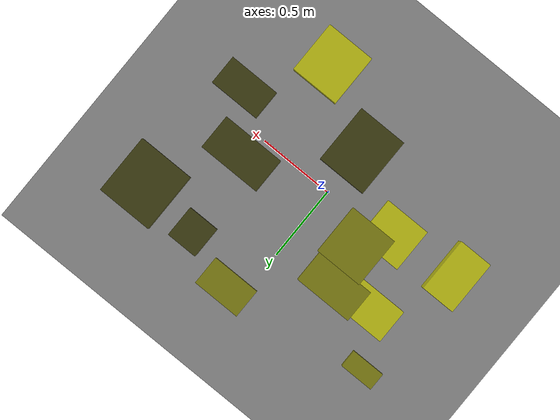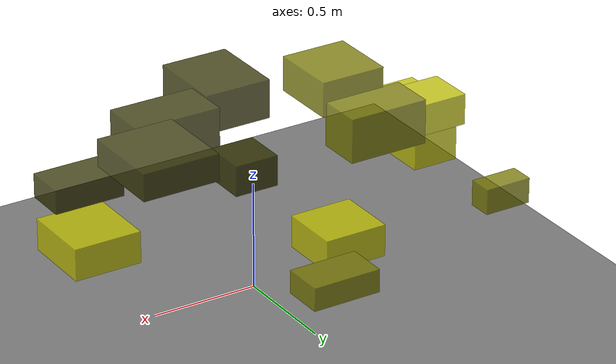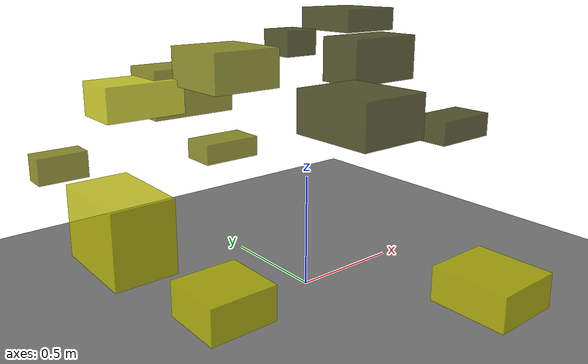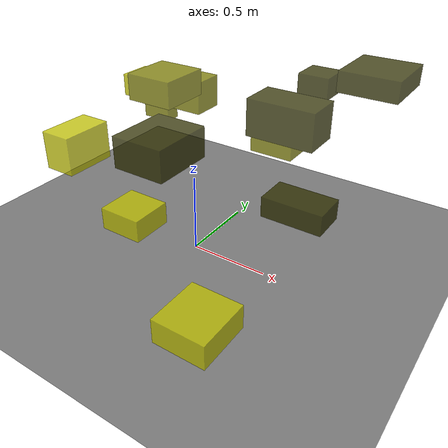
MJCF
<?xml version="1.0"?>
<mujoco model="obstacle_scene">
  <compiler angle="radian" coordinate="local"/>
  <option timestep="0.001" gravity="0 0 -9.81"/>

  <asset>
    <material name="obstacle_mat" rgba="0.8 0.8 0.0 0.8"/>
    <material name="ground_mat" rgba="0.5 0.5 0.5 1"/>
  </asset>

  <worldbody>
    <!-- Ground plane -->
    <geom name="ground" type="plane" size="3 3 0.1" material="ground_mat"/>

    <!-- Obstacles -->
    <body name="obstacle_0" pos="0.523465 0.154804 0.952986">
      <geom name="obs_0" type="box" size="0.197353 0.110908 0.106844" rgba="0.2 0.2 0.0 0.8"/>
    </body>
    <body name="obstacle_1" pos="-0.816470 0.686930 0.543526">
      <geom name="obs_1" type="box" size="0.108745 0.055883 0.058779" rgba="0.5 0.5 0.0 0.8"/>
    </body>
    <body name="obstacle_2" pos="-0.597345 0.373184 0.862191">
      <geom name="obs_2" type="box" size="0.167106 0.107828 0.070829" rgba="0.8 0.8 0.0 0.8"/>
    </body>
    <body name="obstacle_3" pos="0.004625 -0.297763 0.826412">
      <geom name="obs_3" type="box" size="0.157388 0.186065 0.091189" rgba="0.2 0.2 0.0 0.8"/>
    </body>
    <body name="obstacle_4" pos="0.113139 0.822488 0.439111">
      <geom name="obs_4" type="box" size="0.158405 0.094819 0.053419" rgba="0.5 0.5 0.0 0.8"/>
    </body>
    <body name="obstacle_5" pos="0.474707 -0.624656 0.079236">
      <geom name="obs_5" type="box" size="0.165060 0.175139 0.078312" rgba="0.8 0.8 0.0 0.8"/>
    </body>
    <body name="obstacle_6" pos="0.829226 0.623957 1.103761">
      <geom name="obs_6" type="box" size="0.172839 0.185477 0.060621" rgba="0.2 0.2 0.0 0.8"/>
    </body>
    <body name="obstacle_7" pos="-0.310021 0.146245 0.985301">
      <geom name="obs_7" type="box" size="0.150978 0.158467 0.080552" rgba="0.5 0.5 0.0 0.8"/>
    </body>
    <body name="obstacle_8" pos="-0.471409 -0.049518 0.096243">
      <geom name="obs_8" type="box" size="0.152713 0.146488 0.078040" rgba="0.8 0.8 0.0 0.8"/>
    </body>
    <body name="obstacle_9" pos="0.455762 0.670676 0.993262">
      <geom name="obs_9" type="box" size="0.097393 0.097708 0.067435" rgba="0.2 0.2 0.0 0.8"/>
    </body>
    <body name="obstacle_10" pos="-0.360604 0.400950 0.869804">
      <geom name="obs_10" type="box" size="0.184422 0.103172 0.101742" rgba="0.5 0.5 0.0 0.8"/>
    </body>
    <body name="obstacle_11" pos="-0.893851 -0.091052 0.524872">
      <geom name="obs_11" type="box" size="0.109245 0.176230 0.129610" rgba="0.8 0.8 0.0 0.8"/>
    </body>
    <body name="obstacle_12" pos="0.768389 -0.156849 0.639552">
      <geom name="obs_12" type="box" size="0.164220 0.094949 0.056123" rgba="0.2 0.2 0.0 0.8"/>
    </body>
  </worldbody>
</mujoco>
